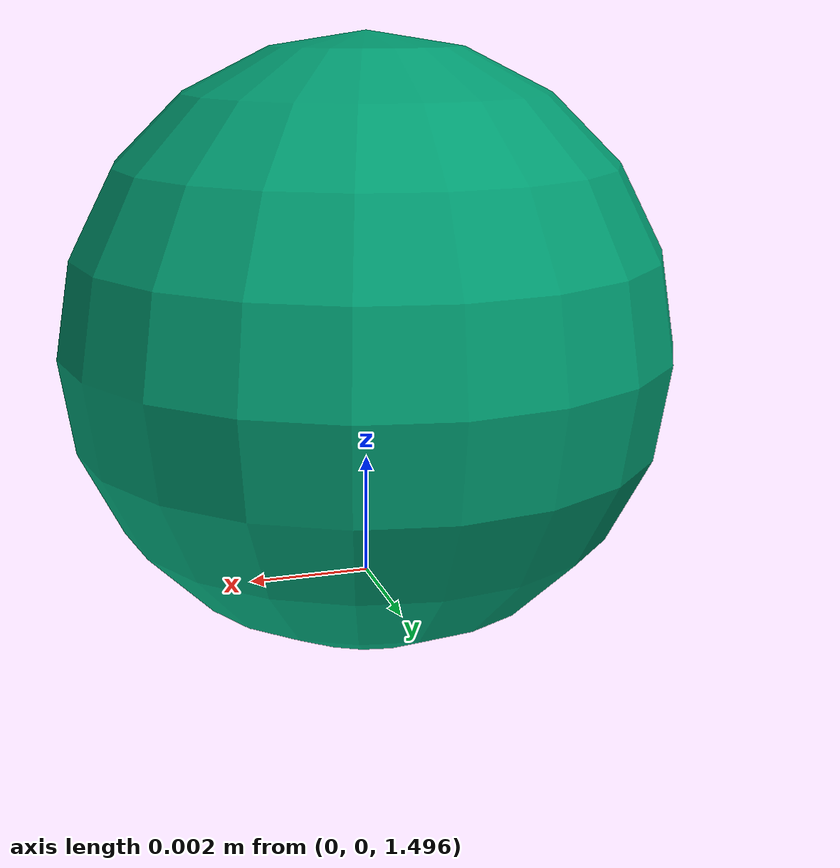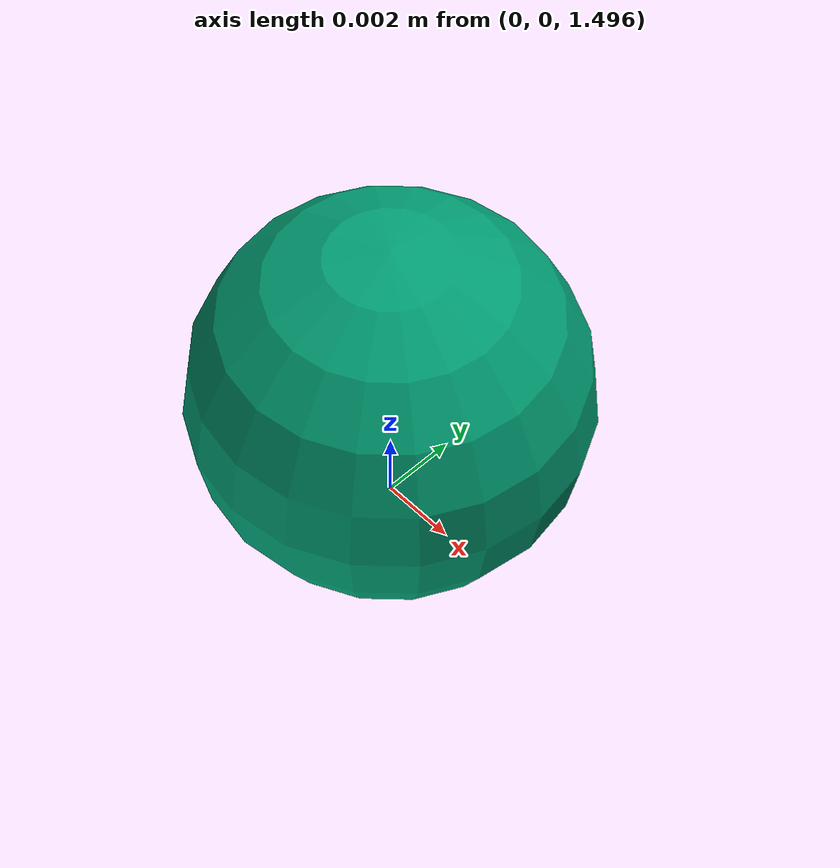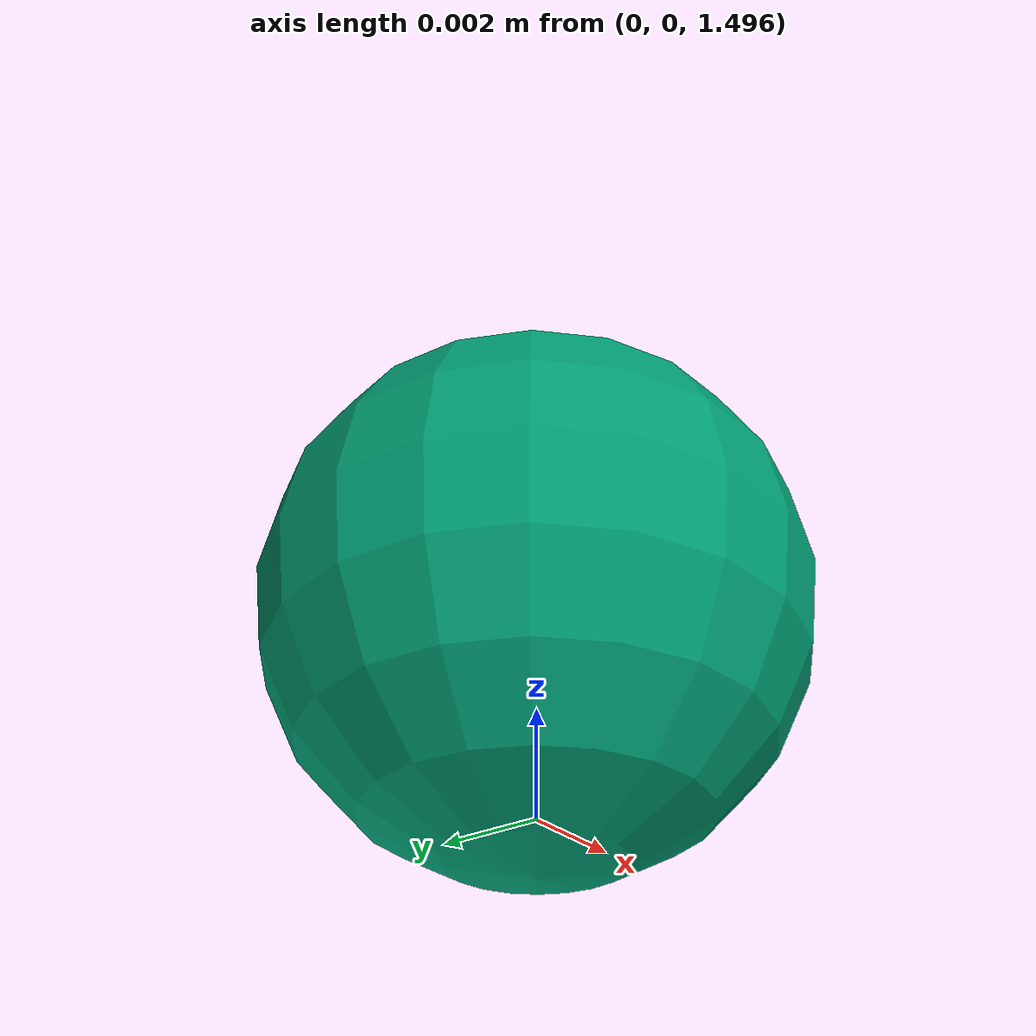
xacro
<?xml version="1.0"?>
<robot xmlns:xacro="http://ros.org/wiki/xacro"
       name="kinect_bot" >

    <xacro:include filename="$(find yumi_demo_launch)/urdf/kinect_mount.xacro" />
    <xacro:kinect_cal parent_link="yumi_body" child_link="camera_link"/>

    <link name="camera_link" />
    <link name="yumi_body" />

</robot>

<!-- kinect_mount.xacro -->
<robot name="kinect_mount" xmlns:xacro="http://ros.org/wiki/xacro">
    <xacro:macro name="kinect_cal" params="parent_link child_link">
	<link name="${child_link}_x_trans"/>
	<link name="${child_link}_y_trans"/>
	<link name="${child_link}_z_trans">
	    <visual>
		<origin rpy="0 0 0" xyz="0 0 0"/>
		<geometry>
		    <sphere radius="0.005"/>
		</geometry>
	    </visual>
	</link>
	<link name="${child_link}_pitch"/>
	<link name="${child_link}_yaw"/>

	<joint name="${child_link}_x_joint" type="prismatic">
	    <parent link="${parent_link}"/>
	    <child  link="${child_link}_x_trans"/>
	    <origin xyz="0 0 0" rpy="0 0 0"/>
	    <axis xyz="1 0 0" rpy="0 0 0"/>
	    <limit lower="-1.0" upper="1.0" effort="30" velocity="0.0508"/>
	</joint>

	<joint name="${child_link}_y_joint" type="prismatic">
	    <parent link="${child_link}_x_trans"/>
	    <child  link="${child_link}_y_trans"/>
	    <origin xyz="0 0 0" rpy="0 0 0"/>
	    <axis xyz="0 1 0" rpy="0 0 0"/>
	    <limit lower="-1.0" upper="1.0" effort="30" velocity="0.0508"/>
	</joint>

	<joint name="${child_link}_z_joint" type="prismatic">
	    <parent link="${child_link}_y_trans"/>
	    <child  link="${child_link}_z_trans"/>
	    <origin xyz="0 0 0" rpy="0 0 0"/>
	    <axis xyz="0 0 1" rpy="0 0 0"/>
	    <limit lower="1.0" upper="2.0" effort="30" velocity="0.0508"/>
	</joint>

	<joint name="${child_link}_yaw_joint" type="revolute">
	    <parent link="${child_link}_z_trans"/>
	    <child  link="${child_link}_yaw"/>
	    <origin xyz="0 0 0" rpy="0 0 0"/>
	    <limit lower="-6.2832" upper="6.2832" effort="2" velocity="10"/>
	    <axis xyz="0 0 1"/>
	</joint>

	<joint name="${child_link}_pitch_joint" type="revolute">
	    <parent link="${child_link}_yaw"/>
	    <child  link="${child_link}_pitch"/>
	    <origin xyz="0 0 0" rpy="0 0 0"/>
	    <limit lower="-6.2832" upper="6.2832" effort="2" velocity="10"/>
	    <axis xyz="0 1 0"/>
	</joint>

	<joint name="${child_link}_roll_joint" type="revolute">
	    <parent link="${child_link}_pitch"/>
	    <child  link="${child_link}"/>
	    <origin xyz="0 0 0" rpy="0 0 0"/>
	    <limit lower="-6.2832" upper="6.2832" effort="2" velocity="10"/>
	    <axis xyz="1 0 0"/>
	</joint>

    </xacro:macro>
</robot>
